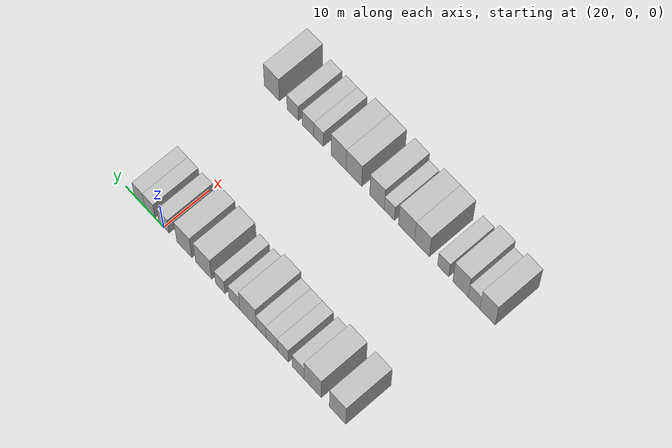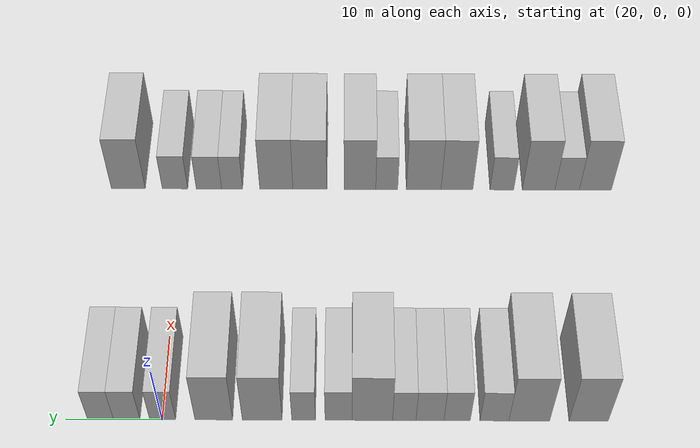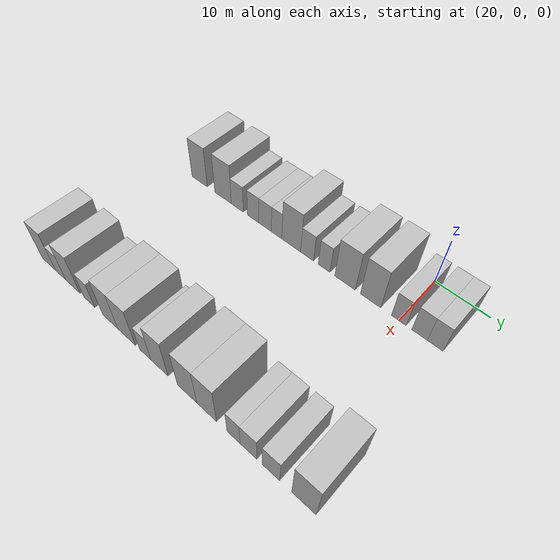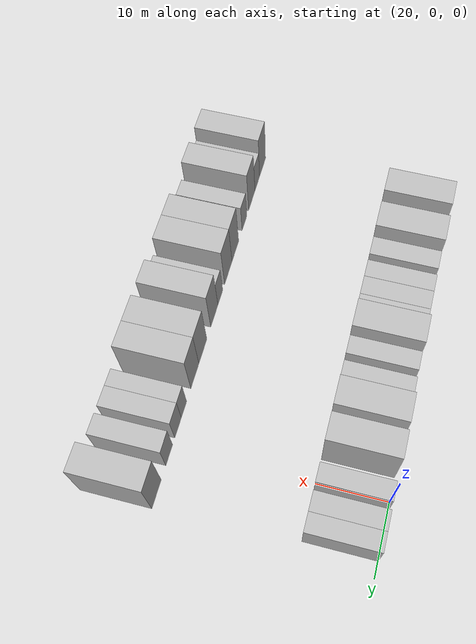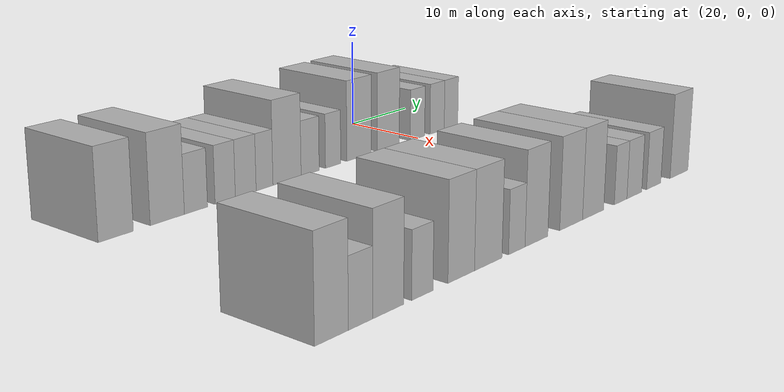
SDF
<sdf version="1.6">
 <world name="default">
  <model name="building_38">
   <static>1</static>
   <pose>25.0000 -44.1700 0 0.000000 0.000000 0.000000</pose>
   <link name="link">
    <pose>0 0 4.50 0 0 0</pose>
    <collision name="collision"><geometry><box><size>10.0000 4.0550 9.0000</size></box></geometry></collision>
    <visual name="visual">
     <cast_shadows>0</cast_shadows>
     <geometry><box><size>10.0000 4.0550 9.0000</size></box></geometry>
     <material>
      <script>
       <uri>model://HANNAS_wall/materials/scripts</uri>
       <uri>model://HANNAS_wall/materials/textures</uri>
       <name>vrc/HANNAS_wall</name>
      </script>
     </material>
    </visual>
   </link>
  </model>
  <model name="building_39">
   <static>1</static>
   <pose>25.0000 -38.0258 0 0.000000 0.000000 0.000000</pose>
   <link name="link">
    <pose>0 0 4.50 0 0 0</pose>
    <collision name="collision"><geometry><box><size>10.0000 4.2335 9.0000</size></box></geometry></collision>
    <visual name="visual">
     <cast_shadows>0</cast_shadows>
     <geometry><box><size>10.0000 4.2335 9.0000</size></box></geometry>
     <material>
      <script>
       <uri>model://HANNAS_wall/materials/scripts</uri>
       <uri>model://HANNAS_wall/materials/textures</uri>
       <name>vrc/HANNAS_wall</name>
      </script>
     </material>
    </visual>
   </link>
  </model>
  <model name="building_40">
   <static>1</static>
   <pose>25.0000 -34.4165 0 0.000000 0.000000 0.000000</pose>
   <link name="link">
    <pose>0 0 3.00 0 0 0</pose>
    <collision name="collision"><geometry><box><size>10.0000 2.9851 6.0000</size></box></geometry></collision>
    <visual name="visual">
     <cast_shadows>0</cast_shadows>
     <geometry><box><size>10.0000 2.9851 6.0000</size></box></geometry>
     <material>
      <script>
       <uri>model://HANNAS_wall/materials/scripts</uri>
       <uri>model://HANNAS_wall/materials/textures</uri>
       <name>vrc/HANNAS_wall</name>
      </script>
     </material>
    </visual>
   </link>
  </model>
  <model name="building_41">
   <static>1</static>
   <pose>25.0000 -30.5574 0 0.000000 0.000000 0.000000</pose>
   <link name="link">
    <pose>0 0 3.00 0 0 0</pose>
    <collision name="collision"><geometry><box><size>10.0000 2.7331 6.0000</size></box></geometry></collision>
    <visual name="visual">
     <cast_shadows>0</cast_shadows>
     <geometry><box><size>10.0000 2.7331 6.0000</size></box></geometry>
     <material>
      <script>
       <uri>model://HANNAS_wall/materials/scripts</uri>
       <uri>model://HANNAS_wall/materials/textures</uri>
       <name>vrc/HANNAS_wall</name>
      </script>
     </material>
    </visual>
   </link>
  </model>
  <model name="building_42">
   <static>1</static>
   <pose>25.0000 -27.7412 0 0.000000 0.000000 0.000000</pose>
   <link name="link">
    <pose>0 0 3.00 0 0 0</pose>
    <collision name="collision"><geometry><box><size>10.0000 2.8993 6.0000</size></box></geometry></collision>
    <visual name="visual">
     <cast_shadows>0</cast_shadows>
     <geometry><box><size>10.0000 2.8993 6.0000</size></box></geometry>
     <material>
      <script>
       <uri>model://HANNAS_wall/materials/scripts</uri>
       <uri>model://HANNAS_wall/materials/textures</uri>
       <name>vrc/HANNAS_wall</name>
      </script>
     </material>
    </visual>
   </link>
  </model>
  <model name="building_43">
   <static>1</static>
   <pose>25.0000 -25.0822 0 0.000000 0.000000 0.000000</pose>
   <link name="link">
    <pose>0 0 3.00 0 0 0</pose>
    <collision name="collision"><geometry><box><size>10.0000 2.4186 6.0000</size></box></geometry></collision>
    <visual name="visual">
     <cast_shadows>0</cast_shadows>
     <geometry><box><size>10.0000 2.4186 6.0000</size></box></geometry>
     <material>
      <script>
       <uri>model://HANNAS_wall/materials/scripts</uri>
       <uri>model://HANNAS_wall/materials/textures</uri>
       <name>vrc/HANNAS_wall</name>
      </script>
     </material>
    </visual>
   </link>
  </model>
  <model name="building_44">
   <static>1</static>
   <pose>25.0000 -21.7755 0 0.000000 0.000000 0.000000</pose>
   <link name="link">
    <pose>0 0 4.50 0 0 0</pose>
    <collision name="collision"><geometry><box><size>10.0000 4.1948 9.0000</size></box></geometry></collision>
    <visual name="visual">
     <cast_shadows>0</cast_shadows>
     <geometry><box><size>10.0000 4.1948 9.0000</size></box></geometry>
     <material>
      <script>
       <uri>model://HANNAS_wall/materials/scripts</uri>
       <uri>model://HANNAS_wall/materials/textures</uri>
       <name>vrc/HANNAS_wall</name>
      </script>
     </material>
    </visual>
   </link>
  </model>
  <model name="building_45">
   <static>1</static>
   <pose>25.0000 -18.2840 0 0.000000 0.000000 0.000000</pose>
   <link name="link">
    <pose>0 0 3.00 0 0 0</pose>
    <collision name="collision"><geometry><box><size>10.0000 2.7881 6.0000</size></box></geometry></collision>
    <visual name="visual">
     <cast_shadows>0</cast_shadows>
     <geometry><box><size>10.0000 2.7881 6.0000</size></box></geometry>
     <material>
      <script>
       <uri>model://HANNAS_wall/materials/scripts</uri>
       <uri>model://HANNAS_wall/materials/textures</uri>
       <name>vrc/HANNAS_wall</name>
      </script>
     </material>
    </visual>
   </link>
  </model>
  <model name="building_46">
   <static>1</static>
   <pose>25.0000 -14.6642 0 0.000000 0.000000 0.000000</pose>
   <link name="link">
    <pose>0 0 3.00 0 0 0</pose>
    <collision name="collision"><geometry><box><size>10.0000 2.4515 6.0000</size></box></geometry></collision>
    <visual name="visual">
     <cast_shadows>0</cast_shadows>
     <geometry><box><size>10.0000 2.4515 6.0000</size></box></geometry>
     <material>
      <script>
       <uri>model://HANNAS_wall/materials/scripts</uri>
       <uri>model://HANNAS_wall/materials/textures</uri>
       <name>vrc/HANNAS_wall</name>
      </script>
     </material>
    </visual>
   </link>
  </model>
  <model name="building_47">
   <static>1</static>
   <pose>25.0000 -10.3760 0 0.000000 0.000000 0.000000</pose>
   <link name="link">
    <pose>0 0 4.50 0 0 0</pose>
    <collision name="collision"><geometry><box><size>10.0000 4.1250 9.0000</size></box></geometry></collision>
    <visual name="visual">
     <cast_shadows>0</cast_shadows>
     <geometry><box><size>10.0000 4.1250 9.0000</size></box></geometry>
     <material>
      <script>
       <uri>model://HANNAS_wall/materials/scripts</uri>
       <uri>model://HANNAS_wall/materials/textures</uri>
       <name>vrc/HANNAS_wall</name>
      </script>
     </material>
    </visual>
   </link>
  </model>
  <model name="building_48">
   <static>1</static>
   <pose>25.0000 -5.3596 0 0.000000 0.000000 0.000000</pose>
   <link name="link">
    <pose>0 0 4.50 0 0 0</pose>
    <collision name="collision"><geometry><box><size>10.0000 3.9077 9.0000</size></box></geometry></collision>
    <visual name="visual">
     <cast_shadows>0</cast_shadows>
     <geometry><box><size>10.0000 3.9077 9.0000</size></box></geometry>
     <material>
      <script>
       <uri>model://HANNAS_wall/materials/scripts</uri>
       <uri>model://HANNAS_wall/materials/textures</uri>
       <name>vrc/HANNAS_wall</name>
      </script>
     </material>
    </visual>
   </link>
  </model>
  <model name="building_49">
   <static>1</static>
   <pose>25.0000 -0.0575 0 0.000000 0.000000 0.000000</pose>
   <link name="link">
    <pose>0 0 3.00 0 0 0</pose>
    <collision name="collision"><geometry><box><size>10.0000 2.6964 6.0000</size></box></geometry></collision>
    <visual name="visual">
     <cast_shadows>0</cast_shadows>
     <geometry><box><size>10.0000 2.6964 6.0000</size></box></geometry>
     <material>
      <script>
       <uri>model://HANNAS_wall/materials/scripts</uri>
       <uri>model://HANNAS_wall/materials/textures</uri>
       <name>vrc/HANNAS_wall</name>
      </script>
     </material>
    </visual>
   </link>
  </model>
  <model name="building_50">
   <static>1</static>
   <pose>25.0000 3.6659 0 0.000000 0.000000 0.000000</pose>
   <link name="link">
    <pose>0 0 3.00 0 0 0</pose>
    <collision name="collision"><geometry><box><size>10.0000 2.7506 6.0000</size></box></geometry></collision>
    <visual name="visual">
     <cast_shadows>0</cast_shadows>
     <geometry><box><size>10.0000 2.7506 6.0000</size></box></geometry>
     <material>
      <script>
       <uri>model://HANNAS_wall/materials/scripts</uri>
       <uri>model://HANNAS_wall/materials/textures</uri>
       <name>vrc/HANNAS_wall</name>
      </script>
     </material>
    </visual>
   </link>
  </model>
  <model name="building_51">
   <static>1</static>
   <pose>25.0000 6.3850 0 0.000000 0.000000 0.000000</pose>
   <link name="link">
    <pose>0 0 3.00 0 0 0</pose>
    <collision name="collision"><geometry><box><size>10.0000 2.6876 6.0000</size></box></geometry></collision>
    <visual name="visual">
     <cast_shadows>0</cast_shadows>
     <geometry><box><size>10.0000 2.6876 6.0000</size></box></geometry>
     <material>
      <script>
       <uri>model://HANNAS_wall/materials/scripts</uri>
       <uri>model://HANNAS_wall/materials/textures</uri>
       <name>vrc/HANNAS_wall</name>
      </script>
     </material>
    </visual>
   </link>
  </model>
  <model name="building_154">
   <static>1</static>
   <pose>55.0000 -48.0642 0 0.000000 0.000000 0.000000</pose>
   <link name="link">
    <pose>0 0 4.50 0 0 0</pose>
    <collision name="collision"><geometry><box><size>10.0000 3.7671 9.0000</size></box></geometry></collision>
    <visual name="visual">
     <cast_shadows>0</cast_shadows>
     <geometry><box><size>10.0000 3.7671 9.0000</size></box></geometry>
     <material>
      <script>
       <uri>model://HANNAS_wall/materials/scripts</uri>
       <uri>model://HANNAS_wall/materials/textures</uri>
       <name>vrc/HANNAS_wall</name>
      </script>
     </material>
    </visual>
   </link>
  </model>
  <model name="building_155">
   <static>1</static>
   <pose>55.0000 -44.7633 0 0.000000 0.000000 0.000000</pose>
   <link name="link">
    <pose>0 0 3.00 0 0 0</pose>
    <collision name="collision"><geometry><box><size>10.0000 2.8347 6.0000</size></box></geometry></collision>
    <visual name="visual">
     <cast_shadows>0</cast_shadows>
     <geometry><box><size>10.0000 2.8347 6.0000</size></box></geometry>
     <material>
      <script>
       <uri>model://HANNAS_wall/materials/scripts</uri>
       <uri>model://HANNAS_wall/materials/textures</uri>
       <name>vrc/HANNAS_wall</name>
      </script>
     </material>
    </visual>
   </link>
  </model>
  <model name="building_156">
   <static>1</static>
   <pose>55.0000 -41.4434 0 0.000000 0.000000 0.000000</pose>
   <link name="link">
    <pose>0 0 4.50 0 0 0</pose>
    <collision name="collision"><geometry><box><size>10.0000 3.8053 9.0000</size></box></geometry></collision>
    <visual name="visual">
     <cast_shadows>0</cast_shadows>
     <geometry><box><size>10.0000 3.8053 9.0000</size></box></geometry>
     <material>
      <script>
       <uri>model://HANNAS_wall/materials/scripts</uri>
       <uri>model://HANNAS_wall/materials/textures</uri>
       <name>vrc/HANNAS_wall</name>
      </script>
     </material>
    </visual>
   </link>
  </model>
  <model name="building_157">
   <static>1</static>
   <pose>55.0000 -37.1497 0 0.000000 0.000000 0.000000</pose>
   <link name="link">
    <pose>0 0 3.00 0 0 0</pose>
    <collision name="collision"><geometry><box><size>10.0000 2.7821 6.0000</size></box></geometry></collision>
    <visual name="visual">
     <cast_shadows>0</cast_shadows>
     <geometry><box><size>10.0000 2.7821 6.0000</size></box></geometry>
     <material>
      <script>
       <uri>model://HANNAS_wall/materials/scripts</uri>
       <uri>model://HANNAS_wall/materials/textures</uri>
       <name>vrc/HANNAS_wall</name>
      </script>
     </material>
    </visual>
   </link>
  </model>
  <model name="building_158">
   <static>1</static>
   <pose>55.0000 -31.8937 0 0.000000 0.000000 0.000000</pose>
   <link name="link">
    <pose>0 0 4.50 0 0 0</pose>
    <collision name="collision"><geometry><box><size>10.0000 3.7298 9.0000</size></box></geometry></collision>
    <visual name="visual">
     <cast_shadows>0</cast_shadows>
     <geometry><box><size>10.0000 3.7298 9.0000</size></box></geometry>
     <material>
      <script>
       <uri>model://HANNAS_wall/materials/scripts</uri>
       <uri>model://HANNAS_wall/materials/textures</uri>
       <name>vrc/HANNAS_wall</name>
      </script>
     </material>
    </visual>
   </link>
  </model>
  <model name="building_159">
   <static>1</static>
   <pose>55.0000 -28.0021 0 0.000000 0.000000 0.000000</pose>
   <link name="link">
    <pose>0 0 4.50 0 0 0</pose>
    <collision name="collision"><geometry><box><size>10.0000 4.0533 9.0000</size></box></geometry></collision>
    <visual name="visual">
     <cast_shadows>0</cast_shadows>
     <geometry><box><size>10.0000 4.0533 9.0000</size></box></geometry>
     <material>
      <script>
       <uri>model://HANNAS_wall/materials/scripts</uri>
       <uri>model://HANNAS_wall/materials/textures</uri>
       <name>vrc/HANNAS_wall</name>
      </script>
     </material>
    </visual>
   </link>
  </model>
  <model name="building_160">
   <static>1</static>
   <pose>55.0000 -23.6914 0 0.000000 0.000000 0.000000</pose>
   <link name="link">
    <pose>0 0 3.00 0 0 0</pose>
    <collision name="collision"><geometry><box><size>10.0000 2.5681 6.0000</size></box></geometry></collision>
    <visual name="visual">
     <cast_shadows>0</cast_shadows>
     <geometry><box><size>10.0000 2.5681 6.0000</size></box></geometry>
     <material>
      <script>
       <uri>model://HANNAS_wall/materials/scripts</uri>
       <uri>model://HANNAS_wall/materials/textures</uri>
       <name>vrc/HANNAS_wall</name>
      </script>
     </material>
    </visual>
   </link>
  </model>
  <model name="building_161">
   <static>1</static>
   <pose>55.0000 -20.5537 0 0.000000 0.000000 0.000000</pose>
   <link name="link">
    <pose>0 0 4.50 0 0 0</pose>
    <collision name="collision"><geometry><box><size>10.0000 3.7073 9.0000</size></box></geometry></collision>
    <visual name="visual">
     <cast_shadows>0</cast_shadows>
     <geometry><box><size>10.0000 3.7073 9.0000</size></box></geometry>
     <material>
      <script>
       <uri>model://HANNAS_wall/materials/scripts</uri>
       <uri>model://HANNAS_wall/materials/textures</uri>
       <name>vrc/HANNAS_wall</name>
      </script>
     </material>
    </visual>
   </link>
  </model>
  <model name="building_162">
   <static>1</static>
   <pose>55.0000 -14.7100 0 0.000000 0.000000 0.000000</pose>
   <link name="link">
    <pose>0 0 4.50 0 0 0</pose>
    <collision name="collision"><geometry><box><size>10.0000 3.9802 9.0000</size></box></geometry></collision>
    <visual name="visual">
     <cast_shadows>0</cast_shadows>
     <geometry><box><size>10.0000 3.9802 9.0000</size></box></geometry>
     <material>
      <script>
       <uri>model://HANNAS_wall/materials/scripts</uri>
       <uri>model://HANNAS_wall/materials/textures</uri>
       <name>vrc/HANNAS_wall</name>
      </script>
     </material>
    </visual>
   </link>
  </model>
  <model name="building_163">
   <static>1</static>
   <pose>55.0000 -10.7815 0 0.000000 0.000000 0.000000</pose>
   <link name="link">
    <pose>0 0 4.50 0 0 0</pose>
    <collision name="collision"><geometry><box><size>10.0000 3.8767 9.0000</size></box></geometry></collision>
    <visual name="visual">
     <cast_shadows>0</cast_shadows>
     <geometry><box><size>10.0000 3.8767 9.0000</size></box></geometry>
     <material>
      <script>
       <uri>model://HANNAS_wall/materials/scripts</uri>
       <uri>model://HANNAS_wall/materials/textures</uri>
       <name>vrc/HANNAS_wall</name>
      </script>
     </material>
    </visual>
   </link>
  </model>
  <model name="building_164">
   <static>1</static>
   <pose>55.0000 -5.6161 0 0.000000 0.000000 0.000000</pose>
   <link name="link">
    <pose>0 0 3.00 0 0 0</pose>
    <collision name="collision"><geometry><box><size>10.0000 2.4542 6.0000</size></box></geometry></collision>
    <visual name="visual">
     <cast_shadows>0</cast_shadows>
     <geometry><box><size>10.0000 2.4542 6.0000</size></box></geometry>
     <material>
      <script>
       <uri>model://HANNAS_wall/materials/scripts</uri>
       <uri>model://HANNAS_wall/materials/textures</uri>
       <name>vrc/HANNAS_wall</name>
      </script>
     </material>
    </visual>
   </link>
  </model>
  <model name="building_165">
   <static>1</static>
   <pose>55.0000 -2.9054 0 0.000000 0.000000 0.000000</pose>
   <link name="link">
    <pose>0 0 3.00 0 0 0</pose>
    <collision name="collision"><geometry><box><size>10.0000 2.9671 6.0000</size></box></geometry></collision>
    <visual name="visual">
     <cast_shadows>0</cast_shadows>
     <geometry><box><size>10.0000 2.9671 6.0000</size></box></geometry>
     <material>
      <script>
       <uri>model://HANNAS_wall/materials/scripts</uri>
       <uri>model://HANNAS_wall/materials/textures</uri>
       <name>vrc/HANNAS_wall</name>
      </script>
     </material>
    </visual>
   </link>
  </model>
  <model name="building_166">
   <static>1</static>
   <pose>55.0000 1.0634 0 0.000000 0.000000 0.000000</pose>
   <link name="link">
    <pose>0 0 3.00 0 0 0</pose>
    <collision name="collision"><geometry><box><size>10.0000 2.9705 6.0000</size></box></geometry></collision>
    <visual name="visual">
     <cast_shadows>0</cast_shadows>
     <geometry><box><size>10.0000 2.9705 6.0000</size></box></geometry>
     <material>
      <script>
       <uri>model://HANNAS_wall/materials/scripts</uri>
       <uri>model://HANNAS_wall/materials/textures</uri>
       <name>vrc/HANNAS_wall</name>
      </script>
     </material>
    </visual>
   </link>
  </model>
  <model name="building_167">
   <static>1</static>
   <pose>55.0000 6.5273 0 0.000000 0.000000 0.000000</pose>
   <link name="link">
    <pose>0 0 4.50 0 0 0</pose>
    <collision name="collision"><geometry><box><size>10.0000 3.9575 9.0000</size></box></geometry></collision>
    <visual name="visual">
     <cast_shadows>0</cast_shadows>
     <geometry><box><size>10.0000 3.9575 9.0000</size></box></geometry>
     <material>
      <script>
       <uri>model://HANNAS_wall/materials/scripts</uri>
       <uri>model://HANNAS_wall/materials/textures</uri>
       <name>vrc/HANNAS_wall</name>
      </script>
     </material>
    </visual>
   </link>
  </model>
 </world>
</sdf>
